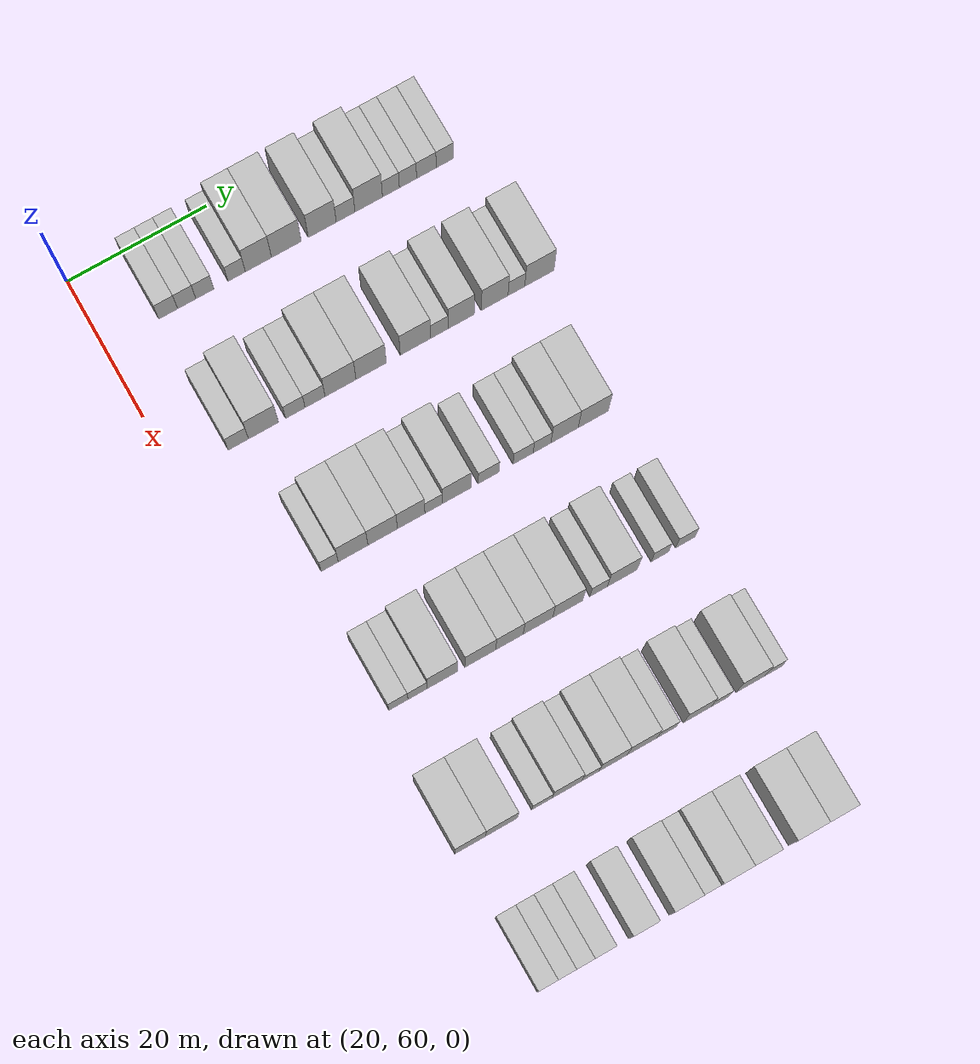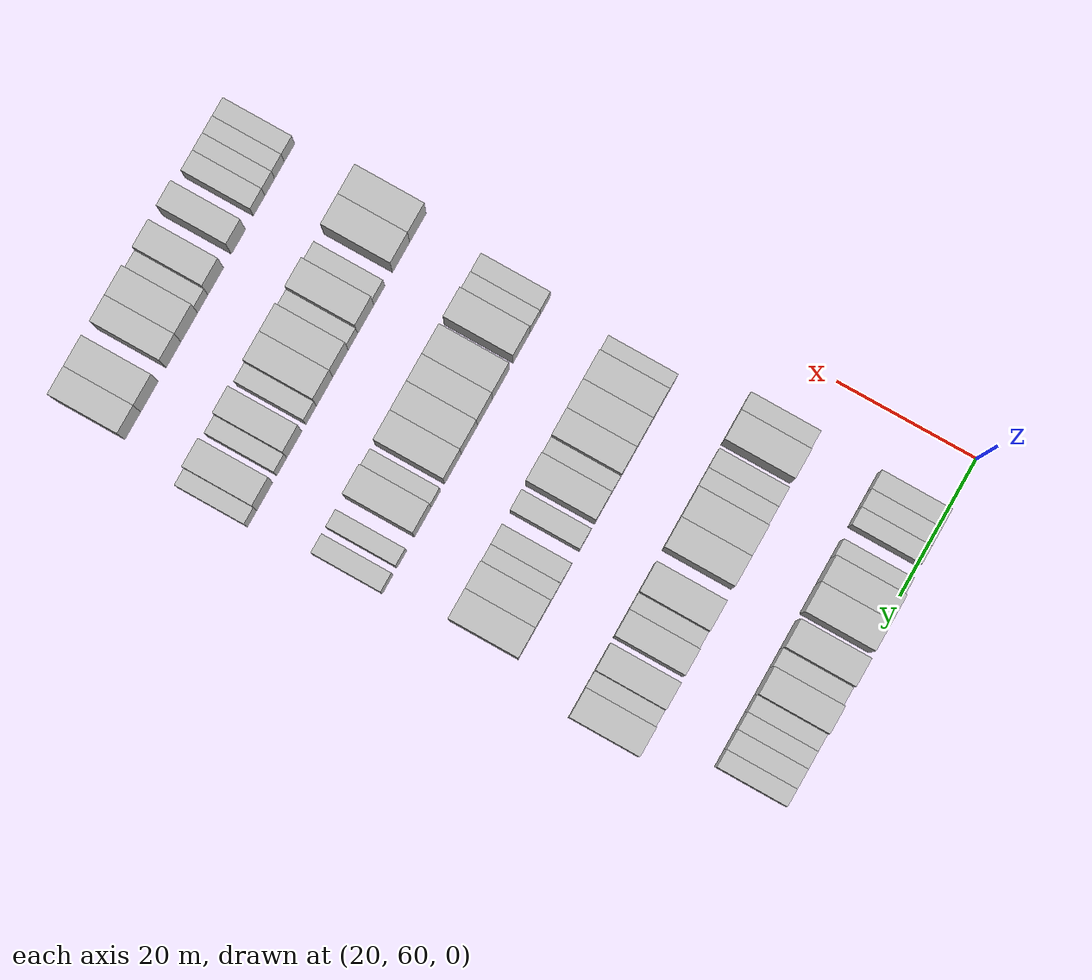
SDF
<sdf version="1.6">
 <world name="default">
  <model name="building_105">
   <static>1</static>
   <pose>25.0000 69.0365 0 0.000000 0.000000 0.000000</pose>
   <link name="link">
    <pose>0 0 3.00 0 0 0</pose>
    <collision name="collision"><geometry><box><size>10.0000 2.6834 6.0000</size></box></geometry></collision>
    <visual name="visual">
     <cast_shadows>0</cast_shadows>
     <geometry><box><size>10.0000 2.6834 6.0000</size></box></geometry>
     <material>
      <script>
       <uri>model://HANNAS_wall/materials/scripts</uri>
       <uri>model://HANNAS_wall/materials/textures</uri>
       <name>vrc/HANNAS_wall</name>
      </script>
     </material>
    </visual>
   </link>
  </model>
  <model name="building_106">
   <static>1</static>
   <pose>25.0000 71.6775 0 0.000000 0.000000 0.000000</pose>
   <link name="link">
    <pose>0 0 3.00 0 0 0</pose>
    <collision name="collision"><geometry><box><size>10.0000 2.5985 6.0000</size></box></geometry></collision>
    <visual name="visual">
     <cast_shadows>0</cast_shadows>
     <geometry><box><size>10.0000 2.5985 6.0000</size></box></geometry>
     <material>
      <script>
       <uri>model://HANNAS_wall/materials/scripts</uri>
       <uri>model://HANNAS_wall/materials/textures</uri>
       <name>vrc/HANNAS_wall</name>
      </script>
     </material>
    </visual>
   </link>
  </model>
  <model name="building_107">
   <static>1</static>
   <pose>25.0000 74.2675 0 0.000000 0.000000 0.000000</pose>
   <link name="link">
    <pose>0 0 3.00 0 0 0</pose>
    <collision name="collision"><geometry><box><size>10.0000 2.5816 6.0000</size></box></geometry></collision>
    <visual name="visual">
     <cast_shadows>0</cast_shadows>
     <geometry><box><size>10.0000 2.5816 6.0000</size></box></geometry>
     <material>
      <script>
       <uri>model://HANNAS_wall/materials/scripts</uri>
       <uri>model://HANNAS_wall/materials/textures</uri>
       <name>vrc/HANNAS_wall</name>
      </script>
     </material>
    </visual>
   </link>
  </model>
  <model name="building_108">
   <static>1</static>
   <pose>25.0000 78.8014 0 0.000000 0.000000 0.000000</pose>
   <link name="link">
    <pose>0 0 3.00 0 0 0</pose>
    <collision name="collision"><geometry><box><size>10.0000 2.4861 6.0000</size></box></geometry></collision>
    <visual name="visual">
     <cast_shadows>0</cast_shadows>
     <geometry><box><size>10.0000 2.4861 6.0000</size></box></geometry>
     <material>
      <script>
       <uri>model://HANNAS_wall/materials/scripts</uri>
       <uri>model://HANNAS_wall/materials/textures</uri>
       <name>vrc/HANNAS_wall</name>
      </script>
     </material>
    </visual>
   </link>
  </model>
  <model name="building_109">
   <static>1</static>
   <pose>25.0000 81.9229 0 0.000000 0.000000 0.000000</pose>
   <link name="link">
    <pose>0 0 4.50 0 0 0</pose>
    <collision name="collision"><geometry><box><size>10.0000 3.7568 9.0000</size></box></geometry></collision>
    <visual name="visual">
     <cast_shadows>0</cast_shadows>
     <geometry><box><size>10.0000 3.7568 9.0000</size></box></geometry>
     <material>
      <script>
       <uri>model://HANNAS_wall/materials/scripts</uri>
       <uri>model://HANNAS_wall/materials/textures</uri>
       <name>vrc/HANNAS_wall</name>
      </script>
     </material>
    </visual>
   </link>
  </model>
  <model name="building_110">
   <static>1</static>
   <pose>25.0000 85.9373 0 0.000000 0.000000 0.000000</pose>
   <link name="link">
    <pose>0 0 4.50 0 0 0</pose>
    <collision name="collision"><geometry><box><size>10.0000 4.2720 9.0000</size></box></geometry></collision>
    <visual name="visual">
     <cast_shadows>0</cast_shadows>
     <geometry><box><size>10.0000 4.2720 9.0000</size></box></geometry>
     <material>
      <script>
       <uri>model://HANNAS_wall/materials/scripts</uri>
       <uri>model://HANNAS_wall/materials/textures</uri>
       <name>vrc/HANNAS_wall</name>
      </script>
     </material>
    </visual>
   </link>
  </model>
  <model name="building_111">
   <static>1</static>
   <pose>25.0000 91.0894 0 0.000000 0.000000 0.000000</pose>
   <link name="link">
    <pose>0 0 4.50 0 0 0</pose>
    <collision name="collision"><geometry><box><size>10.0000 4.0320 9.0000</size></box></geometry></collision>
    <visual name="visual">
     <cast_shadows>0</cast_shadows>
     <geometry><box><size>10.0000 4.0320 9.0000</size></box></geometry>
     <material>
      <script>
       <uri>model://HANNAS_wall/materials/scripts</uri>
       <uri>model://HANNAS_wall/materials/textures</uri>
       <name>vrc/HANNAS_wall</name>
      </script>
     </material>
    </visual>
   </link>
  </model>
  <model name="building_112">
   <static>1</static>
   <pose>25.0000 94.4571 0 0.000000 0.000000 0.000000</pose>
   <link name="link">
    <pose>0 0 3.00 0 0 0</pose>
    <collision name="collision"><geometry><box><size>10.0000 2.7035 6.0000</size></box></geometry></collision>
    <visual name="visual">
     <cast_shadows>0</cast_shadows>
     <geometry><box><size>10.0000 2.7035 6.0000</size></box></geometry>
     <material>
      <script>
       <uri>model://HANNAS_wall/materials/scripts</uri>
       <uri>model://HANNAS_wall/materials/textures</uri>
       <name>vrc/HANNAS_wall</name>
      </script>
     </material>
    </visual>
   </link>
  </model>
  <model name="building_113">
   <static>1</static>
   <pose>25.0000 97.7942 0 0.000000 0.000000 0.000000</pose>
   <link name="link">
    <pose>0 0 4.50 0 0 0</pose>
    <collision name="collision"><geometry><box><size>10.0000 3.9705 9.0000</size></box></geometry></collision>
    <visual name="visual">
     <cast_shadows>0</cast_shadows>
     <geometry><box><size>10.0000 3.9705 9.0000</size></box></geometry>
     <material>
      <script>
       <uri>model://HANNAS_wall/materials/scripts</uri>
       <uri>model://HANNAS_wall/materials/textures</uri>
       <name>vrc/HANNAS_wall</name>
      </script>
     </material>
    </visual>
   </link>
  </model>
  <model name="building_114">
   <static>1</static>
   <pose>25.0000 101.0001 0 0.000000 0.000000 0.000000</pose>
   <link name="link">
    <pose>0 0 3.00 0 0 0</pose>
    <collision name="collision"><geometry><box><size>10.0000 2.4414 6.0000</size></box></geometry></collision>
    <visual name="visual">
     <cast_shadows>0</cast_shadows>
     <geometry><box><size>10.0000 2.4414 6.0000</size></box></geometry>
     <material>
      <script>
       <uri>model://HANNAS_wall/materials/scripts</uri>
       <uri>model://HANNAS_wall/materials/textures</uri>
       <name>vrc/HANNAS_wall</name>
      </script>
     </material>
    </visual>
   </link>
  </model>
  <model name="building_115">
   <static>1</static>
   <pose>25.0000 103.4690 0 0.000000 0.000000 0.000000</pose>
   <link name="link">
    <pose>0 0 3.00 0 0 0</pose>
    <collision name="collision"><geometry><box><size>10.0000 2.4964 6.0000</size></box></geometry></collision>
    <visual name="visual">
     <cast_shadows>0</cast_shadows>
     <geometry><box><size>10.0000 2.4964 6.0000</size></box></geometry>
     <material>
      <script>
       <uri>model://HANNAS_wall/materials/scripts</uri>
       <uri>model://HANNAS_wall/materials/textures</uri>
       <name>vrc/HANNAS_wall</name>
      </script>
     </material>
    </visual>
   </link>
  </model>
  <model name="building_116">
   <static>1</static>
   <pose>25.0000 106.1322 0 0.000000 0.000000 0.000000</pose>
   <link name="link">
    <pose>0 0 3.00 0 0 0</pose>
    <collision name="collision"><geometry><box><size>10.0000 2.8299 6.0000</size></box></geometry></collision>
    <visual name="visual">
     <cast_shadows>0</cast_shadows>
     <geometry><box><size>10.0000 2.8299 6.0000</size></box></geometry>
     <material>
      <script>
       <uri>model://HANNAS_wall/materials/scripts</uri>
       <uri>model://HANNAS_wall/materials/textures</uri>
       <name>vrc/HANNAS_wall</name>
      </script>
     </material>
    </visual>
   </link>
  </model>
  <model name="building_117">
   <static>1</static>
   <pose>25.0000 108.8115 0 0.000000 0.000000 0.000000</pose>
   <link name="link">
    <pose>0 0 3.00 0 0 0</pose>
    <collision name="collision"><geometry><box><size>10.0000 2.5289 6.0000</size></box></geometry></collision>
    <visual name="visual">
     <cast_shadows>0</cast_shadows>
     <geometry><box><size>10.0000 2.5289 6.0000</size></box></geometry>
     <material>
      <script>
       <uri>model://HANNAS_wall/materials/scripts</uri>
       <uri>model://HANNAS_wall/materials/textures</uri>
       <name>vrc/HANNAS_wall</name>
      </script>
     </material>
    </visual>
   </link>
  </model>
  <model name="building_284">
   <static>1</static>
   <pose>44.0000 68.5951 0 0.000000 0.000000 0.000000</pose>
   <link name="link">
    <pose>0 0 3.00 0 0 0</pose>
    <collision name="collision"><geometry><box><size>10.0000 2.8685 6.0000</size></box></geometry></collision>
    <visual name="visual">
     <cast_shadows>0</cast_shadows>
     <geometry><box><size>10.0000 2.8685 6.0000</size></box></geometry>
     <material>
      <script>
       <uri>model://HANNAS_wall/materials/scripts</uri>
       <uri>model://HANNAS_wall/materials/textures</uri>
       <name>vrc/HANNAS_wall</name>
      </script>
     </material>
    </visual>
   </link>
  </model>
  <model name="building_285">
   <static>1</static>
   <pose>44.0000 72.1524 0 0.000000 0.000000 0.000000</pose>
   <link name="link">
    <pose>0 0 4.50 0 0 0</pose>
    <collision name="collision"><geometry><box><size>10.0000 4.2460 9.0000</size></box></geometry></collision>
    <visual name="visual">
     <cast_shadows>0</cast_shadows>
     <geometry><box><size>10.0000 4.2460 9.0000</size></box></geometry>
     <material>
      <script>
       <uri>model://HANNAS_wall/materials/scripts</uri>
       <uri>model://HANNAS_wall/materials/textures</uri>
       <name>vrc/HANNAS_wall</name>
      </script>
     </material>
    </visual>
   </link>
  </model>
  <model name="building_286">
   <static>1</static>
   <pose>44.0000 76.6606 0 0.000000 0.000000 0.000000</pose>
   <link name="link">
    <pose>0 0 3.00 0 0 0</pose>
    <collision name="collision"><geometry><box><size>10.0000 2.7705 6.0000</size></box></geometry></collision>
    <visual name="visual">
     <cast_shadows>0</cast_shadows>
     <geometry><box><size>10.0000 2.7705 6.0000</size></box></geometry>
     <material>
      <script>
       <uri>model://HANNAS_wall/materials/scripts</uri>
       <uri>model://HANNAS_wall/materials/textures</uri>
       <name>vrc/HANNAS_wall</name>
      </script>
     </material>
    </visual>
   </link>
  </model>
  <model name="building_287">
   <static>1</static>
   <pose>44.0000 79.4630 0 0.000000 0.000000 0.000000</pose>
   <link name="link">
    <pose>0 0 3.00 0 0 0</pose>
    <collision name="collision"><geometry><box><size>10.0000 2.8343 6.0000</size></box></geometry></collision>
    <visual name="visual">
     <cast_shadows>0</cast_shadows>
     <geometry><box><size>10.0000 2.8343 6.0000</size></box></geometry>
     <material>
      <script>
       <uri>model://HANNAS_wall/materials/scripts</uri>
       <uri>model://HANNAS_wall/materials/textures</uri>
       <name>vrc/HANNAS_wall</name>
      </script>
     </material>
    </visual>
   </link>
  </model>
  <model name="building_288">
   <static>1</static>
   <pose>44.0000 83.0851 0 0.000000 0.000000 0.000000</pose>
   <link name="link">
    <pose>0 0 4.50 0 0 0</pose>
    <collision name="collision"><geometry><box><size>10.0000 4.4100 9.0000</size></box></geometry></collision>
    <visual name="visual">
     <cast_shadows>0</cast_shadows>
     <geometry><box><size>10.0000 4.4100 9.0000</size></box></geometry>
     <material>
      <script>
       <uri>model://HANNAS_wall/materials/scripts</uri>
       <uri>model://HANNAS_wall/materials/textures</uri>
       <name>vrc/HANNAS_wall</name>
      </script>
     </material>
    </visual>
   </link>
  </model>
  <model name="building_289">
   <static>1</static>
   <pose>44.0000 87.4494 0 0.000000 0.000000 0.000000</pose>
   <link name="link">
    <pose>0 0 4.50 0 0 0</pose>
    <collision name="collision"><geometry><box><size>10.0000 4.3185 9.0000</size></box></geometry></collision>
    <visual name="visual">
     <cast_shadows>0</cast_shadows>
     <geometry><box><size>10.0000 4.3185 9.0000</size></box></geometry>
     <material>
      <script>
       <uri>model://HANNAS_wall/materials/scripts</uri>
       <uri>model://HANNAS_wall/materials/textures</uri>
       <name>vrc/HANNAS_wall</name>
      </script>
     </material>
    </visual>
   </link>
  </model>
  <model name="building_290">
   <static>1</static>
   <pose>44.0000 93.7740 0 0.000000 0.000000 0.000000</pose>
   <link name="link">
    <pose>0 0 4.50 0 0 0</pose>
    <collision name="collision"><geometry><box><size>10.0000 4.3306 9.0000</size></box></geometry></collision>
    <visual name="visual">
     <cast_shadows>0</cast_shadows>
     <geometry><box><size>10.0000 4.3306 9.0000</size></box></geometry>
     <material>
      <script>
       <uri>model://HANNAS_wall/materials/scripts</uri>
       <uri>model://HANNAS_wall/materials/textures</uri>
       <name>vrc/HANNAS_wall</name>
      </script>
     </material>
    </visual>
   </link>
  </model>
  <model name="building_291">
   <static>1</static>
   <pose>44.0000 97.1938 0 0.000000 0.000000 0.000000</pose>
   <link name="link">
    <pose>0 0 3.00 0 0 0</pose>
    <collision name="collision"><geometry><box><size>10.0000 2.5091 6.0000</size></box></geometry></collision>
    <visual name="visual">
     <cast_shadows>0</cast_shadows>
     <geometry><box><size>10.0000 2.5091 6.0000</size></box></geometry>
     <material>
      <script>
       <uri>model://HANNAS_wall/materials/scripts</uri>
       <uri>model://HANNAS_wall/materials/textures</uri>
       <name>vrc/HANNAS_wall</name>
      </script>
     </material>
    </visual>
   </link>
  </model>
  <model name="building_292">
   <static>1</static>
   <pose>44.0000 100.3303 0 0.000000 0.000000 0.000000</pose>
   <link name="link">
    <pose>0 0 4.50 0 0 0</pose>
    <collision name="collision"><geometry><box><size>10.0000 3.7640 9.0000</size></box></geometry></collision>
    <visual name="visual">
     <cast_shadows>0</cast_shadows>
     <geometry><box><size>10.0000 3.7640 9.0000</size></box></geometry>
     <material>
      <script>
       <uri>model://HANNAS_wall/materials/scripts</uri>
       <uri>model://HANNAS_wall/materials/textures</uri>
       <name>vrc/HANNAS_wall</name>
      </script>
     </material>
    </visual>
   </link>
  </model>
  <model name="building_293">
   <static>1</static>
   <pose>44.0000 105.1509 0 0.000000 0.000000 0.000000</pose>
   <link name="link">
    <pose>0 0 4.50 0 0 0</pose>
    <collision name="collision"><geometry><box><size>10.0000 3.8773 9.0000</size></box></geometry></collision>
    <visual name="visual">
     <cast_shadows>0</cast_shadows>
     <geometry><box><size>10.0000 3.8773 9.0000</size></box></geometry>
     <material>
      <script>
       <uri>model://HANNAS_wall/materials/scripts</uri>
       <uri>model://HANNAS_wall/materials/textures</uri>
       <name>vrc/HANNAS_wall</name>
      </script>
     </material>
    </visual>
   </link>
  </model>
  <model name="building_294">
   <static>1</static>
   <pose>44.0000 108.2915 0 0.000000 0.000000 0.000000</pose>
   <link name="link">
    <pose>0 0 3.00 0 0 0</pose>
    <collision name="collision"><geometry><box><size>10.0000 2.4039 6.0000</size></box></geometry></collision>
    <visual name="visual">
     <cast_shadows>0</cast_shadows>
     <geometry><box><size>10.0000 2.4039 6.0000</size></box></geometry>
     <material>
      <script>
       <uri>model://HANNAS_wall/materials/scripts</uri>
       <uri>model://HANNAS_wall/materials/textures</uri>
       <name>vrc/HANNAS_wall</name>
      </script>
     </material>
    </visual>
   </link>
  </model>
  <model name="building_295">
   <static>1</static>
   <pose>44.0000 111.6051 0 0.000000 0.000000 0.000000</pose>
   <link name="link">
    <pose>0 0 4.50 0 0 0</pose>
    <collision name="collision"><geometry><box><size>10.0000 4.2231 9.0000</size></box></geometry></collision>
    <visual name="visual">
     <cast_shadows>0</cast_shadows>
     <geometry><box><size>10.0000 4.2231 9.0000</size></box></geometry>
     <material>
      <script>
       <uri>model://HANNAS_wall/materials/scripts</uri>
       <uri>model://HANNAS_wall/materials/textures</uri>
       <name>vrc/HANNAS_wall</name>
      </script>
     </material>
    </visual>
   </link>
  </model>
  <model name="building_459">
   <static>1</static>
   <pose>63.0000 70.9305 0 0.000000 0.000000 0.000000</pose>
   <link name="link">
    <pose>0 0 3.00 0 0 0</pose>
    <collision name="collision"><geometry><box><size>10.0000 2.4033 6.0000</size></box></geometry></collision>
    <visual name="visual">
     <cast_shadows>0</cast_shadows>
     <geometry><box><size>10.0000 2.4033 6.0000</size></box></geometry>
     <material>
      <script>
       <uri>model://HANNAS_wall/materials/scripts</uri>
       <uri>model://HANNAS_wall/materials/textures</uri>
       <name>vrc/HANNAS_wall</name>
      </script>
     </material>
    </visual>
   </link>
  </model>
  <model name="building_460">
   <static>1</static>
   <pose>63.0000 74.2197 0 0.000000 0.000000 0.000000</pose>
   <link name="link">
    <pose>0 0 4.50 0 0 0</pose>
    <collision name="collision"><geometry><box><size>10.0000 4.1751 9.0000</size></box></geometry></collision>
    <visual name="visual">
     <cast_shadows>0</cast_shadows>
     <geometry><box><size>10.0000 4.1751 9.0000</size></box></geometry>
     <material>
      <script>
       <uri>model://HANNAS_wall/materials/scripts</uri>
       <uri>model://HANNAS_wall/materials/textures</uri>
       <name>vrc/HANNAS_wall</name>
      </script>
     </material>
    </visual>
   </link>
  </model>
  <model name="building_461">
   <static>1</static>
   <pose>63.0000 78.3830 0 0.000000 0.000000 0.000000</pose>
   <link name="link">
    <pose>0 0 4.50 0 0 0</pose>
    <collision name="collision"><geometry><box><size>10.0000 4.1514 9.0000</size></box></geometry></collision>
    <visual name="visual">
     <cast_shadows>0</cast_shadows>
     <geometry><box><size>10.0000 4.1514 9.0000</size></box></geometry>
     <material>
      <script>
       <uri>model://HANNAS_wall/materials/scripts</uri>
       <uri>model://HANNAS_wall/materials/textures</uri>
       <name>vrc/HANNAS_wall</name>
      </script>
     </material>
    </visual>
   </link>
  </model>
  <model name="building_462">
   <static>1</static>
   <pose>63.0000 82.4024 0 0.000000 0.000000 0.000000</pose>
   <link name="link">
    <pose>0 0 4.50 0 0 0</pose>
    <collision name="collision"><geometry><box><size>10.0000 3.8875 9.0000</size></box></geometry></collision>
    <visual name="visual">
     <cast_shadows>0</cast_shadows>
     <geometry><box><size>10.0000 3.8875 9.0000</size></box></geometry>
     <material>
      <script>
       <uri>model://HANNAS_wall/materials/scripts</uri>
       <uri>model://HANNAS_wall/materials/textures</uri>
       <name>vrc/HANNAS_wall</name>
      </script>
     </material>
    </visual>
   </link>
  </model>
  <model name="building_463">
   <static>1</static>
   <pose>63.0000 85.5853 0 0.000000 0.000000 0.000000</pose>
   <link name="link">
    <pose>0 0 3.00 0 0 0</pose>
    <collision name="collision"><geometry><box><size>10.0000 2.4783 6.0000</size></box></geometry></collision>
    <visual name="visual">
     <cast_shadows>0</cast_shadows>
     <geometry><box><size>10.0000 2.4783 6.0000</size></box></geometry>
     <material>
      <script>
       <uri>model://HANNAS_wall/materials/scripts</uri>
       <uri>model://HANNAS_wall/materials/textures</uri>
       <name>vrc/HANNAS_wall</name>
      </script>
     </material>
    </visual>
   </link>
  </model>
  <model name="building_464">
   <static>1</static>
   <pose>63.0000 88.8524 0 0.000000 0.000000 0.000000</pose>
   <link name="link">
    <pose>0 0 4.50 0 0 0</pose>
    <collision name="collision"><geometry><box><size>10.0000 4.0561 9.0000</size></box></geometry></collision>
    <visual name="visual">
     <cast_shadows>0</cast_shadows>
     <geometry><box><size>10.0000 4.0561 9.0000</size></box></geometry>
     <material>
      <script>
       <uri>model://HANNAS_wall/materials/scripts</uri>
       <uri>model://HANNAS_wall/materials/textures</uri>
       <name>vrc/HANNAS_wall</name>
      </script>
     </material>
    </visual>
   </link>
  </model>
  <model name="building_465">
   <static>1</static>
   <pose>63.0000 93.3658 0 0.000000 0.000000 0.000000</pose>
   <link name="link">
    <pose>0 0 3.00 0 0 0</pose>
    <collision name="collision"><geometry><box><size>10.0000 2.9708 6.0000</size></box></geometry></collision>
    <visual name="visual">
     <cast_shadows>0</cast_shadows>
     <geometry><box><size>10.0000 2.9708 6.0000</size></box></geometry>
     <material>
      <script>
       <uri>model://HANNAS_wall/materials/scripts</uri>
       <uri>model://HANNAS_wall/materials/textures</uri>
       <name>vrc/HANNAS_wall</name>
      </script>
     </material>
    </visual>
   </link>
  </model>
  <model name="building_466">
   <static>1</static>
   <pose>63.0000 98.2830 0 0.000000 0.000000 0.000000</pose>
   <link name="link">
    <pose>0 0 3.00 0 0 0</pose>
    <collision name="collision"><geometry><box><size>10.0000 2.8636 6.0000</size></box></geometry></collision>
    <visual name="visual">
     <cast_shadows>0</cast_shadows>
     <geometry><box><size>10.0000 2.8636 6.0000</size></box></geometry>
     <material>
      <script>
       <uri>model://HANNAS_wall/materials/scripts</uri>
       <uri>model://HANNAS_wall/materials/textures</uri>
       <name>vrc/HANNAS_wall</name>
      </script>
     </material>
    </visual>
   </link>
  </model>
  <model name="building_467">
   <static>1</static>
   <pose>63.0000 100.9852 0 0.000000 0.000000 0.000000</pose>
   <link name="link">
    <pose>0 0 3.00 0 0 0</pose>
    <collision name="collision"><geometry><box><size>10.0000 2.5406 6.0000</size></box></geometry></collision>
    <visual name="visual">
     <cast_shadows>0</cast_shadows>
     <geometry><box><size>10.0000 2.5406 6.0000</size></box></geometry>
     <material>
      <script>
       <uri>model://HANNAS_wall/materials/scripts</uri>
       <uri>model://HANNAS_wall/materials/textures</uri>
       <name>vrc/HANNAS_wall</name>
      </script>
     </material>
    </visual>
   </link>
  </model>
  <model name="building_468">
   <static>1</static>
   <pose>63.0000 104.2088 0 0.000000 0.000000 0.000000</pose>
   <link name="link">
    <pose>0 0 4.50 0 0 0</pose>
    <collision name="collision"><geometry><box><size>10.0000 3.9067 9.0000</size></box></geometry></collision>
    <visual name="visual">
     <cast_shadows>0</cast_shadows>
     <geometry><box><size>10.0000 3.9067 9.0000</size></box></geometry>
     <material>
      <script>
       <uri>model://HANNAS_wall/materials/scripts</uri>
       <uri>model://HANNAS_wall/materials/textures</uri>
       <name>vrc/HANNAS_wall</name>
      </script>
     </material>
    </visual>
   </link>
  </model>
  <model name="building_469">
   <static>1</static>
   <pose>63.0000 108.3186 0 0.000000 0.000000 0.000000</pose>
   <link name="link">
    <pose>0 0 4.50 0 0 0</pose>
    <collision name="collision"><geometry><box><size>10.0000 4.3129 9.0000</size></box></geometry></collision>
    <visual name="visual">
     <cast_shadows>0</cast_shadows>
     <geometry><box><size>10.0000 4.3129 9.0000</size></box></geometry>
     <material>
      <script>
       <uri>model://HANNAS_wall/materials/scripts</uri>
       <uri>model://HANNAS_wall/materials/textures</uri>
       <name>vrc/HANNAS_wall</name>
      </script>
     </material>
    </visual>
   </link>
  </model>
  <model name="building_630">
   <static>1</static>
   <pose>82.0000 69.8633 0 0.000000 0.000000 0.000000</pose>
   <link name="link">
    <pose>0 0 3.00 0 0 0</pose>
    <collision name="collision"><geometry><box><size>10.0000 2.6681 6.0000</size></box></geometry></collision>
    <visual name="visual">
     <cast_shadows>0</cast_shadows>
     <geometry><box><size>10.0000 2.6681 6.0000</size></box></geometry>
     <material>
      <script>
       <uri>model://HANNAS_wall/materials/scripts</uri>
       <uri>model://HANNAS_wall/materials/textures</uri>
       <name>vrc/HANNAS_wall</name>
      </script>
     </material>
    </visual>
   </link>
  </model>
  <model name="building_631">
   <static>1</static>
   <pose>82.0000 72.5353 0 0.000000 0.000000 0.000000</pose>
   <link name="link">
    <pose>0 0 3.00 0 0 0</pose>
    <collision name="collision"><geometry><box><size>10.0000 2.6759 6.0000</size></box></geometry></collision>
    <visual name="visual">
     <cast_shadows>0</cast_shadows>
     <geometry><box><size>10.0000 2.6759 6.0000</size></box></geometry>
     <material>
      <script>
       <uri>model://HANNAS_wall/materials/scripts</uri>
       <uri>model://HANNAS_wall/materials/textures</uri>
       <name>vrc/HANNAS_wall</name>
      </script>
     </material>
    </visual>
   </link>
  </model>
  <model name="building_632">
   <static>1</static>
   <pose>82.0000 75.9998 0 0.000000 0.000000 0.000000</pose>
   <link name="link">
    <pose>0 0 4.50 0 0 0</pose>
    <collision name="collision"><geometry><box><size>10.0000 4.2531 9.0000</size></box></geometry></collision>
    <visual name="visual">
     <cast_shadows>0</cast_shadows>
     <geometry><box><size>10.0000 4.2531 9.0000</size></box></geometry>
     <material>
      <script>
       <uri>model://HANNAS_wall/materials/scripts</uri>
       <uri>model://HANNAS_wall/materials/textures</uri>
       <name>vrc/HANNAS_wall</name>
      </script>
     </material>
    </visual>
   </link>
  </model>
  <model name="building_633">
   <static>1</static>
   <pose>82.0000 81.2829 0 0.000000 0.000000 0.000000</pose>
   <link name="link">
    <pose>0 0 4.50 0 0 0</pose>
    <collision name="collision"><geometry><box><size>10.0000 4.3130 9.0000</size></box></geometry></collision>
    <visual name="visual">
     <cast_shadows>0</cast_shadows>
     <geometry><box><size>10.0000 4.3130 9.0000</size></box></geometry>
     <material>
      <script>
       <uri>model://HANNAS_wall/materials/scripts</uri>
       <uri>model://HANNAS_wall/materials/textures</uri>
       <name>vrc/HANNAS_wall</name>
      </script>
     </material>
    </visual>
   </link>
  </model>
  <model name="building_634">
   <static>1</static>
   <pose>82.0000 85.3814 0 0.000000 0.000000 0.000000</pose>
   <link name="link">
    <pose>0 0 4.50 0 0 0</pose>
    <collision name="collision"><geometry><box><size>10.0000 3.8842 9.0000</size></box></geometry></collision>
    <visual name="visual">
     <cast_shadows>0</cast_shadows>
     <geometry><box><size>10.0000 3.8842 9.0000</size></box></geometry>
     <material>
      <script>
       <uri>model://HANNAS_wall/materials/scripts</uri>
       <uri>model://HANNAS_wall/materials/textures</uri>
       <name>vrc/HANNAS_wall</name>
      </script>
     </material>
    </visual>
   </link>
  </model>
  <model name="building_635">
   <static>1</static>
   <pose>82.0000 89.4037 0 0.000000 0.000000 0.000000</pose>
   <link name="link">
    <pose>0 0 4.50 0 0 0</pose>
    <collision name="collision"><geometry><box><size>10.0000 4.1604 9.0000</size></box></geometry></collision>
    <visual name="visual">
     <cast_shadows>0</cast_shadows>
     <geometry><box><size>10.0000 4.1604 9.0000</size></box></geometry>
     <material>
      <script>
       <uri>model://HANNAS_wall/materials/scripts</uri>
       <uri>model://HANNAS_wall/materials/textures</uri>
       <name>vrc/HANNAS_wall</name>
      </script>
     </material>
    </visual>
   </link>
  </model>
  <model name="building_636">
   <static>1</static>
   <pose>82.0000 93.6115 0 0.000000 0.000000 0.000000</pose>
   <link name="link">
    <pose>0 0 4.50 0 0 0</pose>
    <collision name="collision"><geometry><box><size>10.0000 4.2551 9.0000</size></box></geometry></collision>
    <visual name="visual">
     <cast_shadows>0</cast_shadows>
     <geometry><box><size>10.0000 4.2551 9.0000</size></box></geometry>
     <material>
      <script>
       <uri>model://HANNAS_wall/materials/scripts</uri>
       <uri>model://HANNAS_wall/materials/textures</uri>
       <name>vrc/HANNAS_wall</name>
      </script>
     </material>
    </visual>
   </link>
  </model>
  <model name="building_637">
   <static>1</static>
   <pose>82.0000 97.9746 0 0.000000 0.000000 0.000000</pose>
   <link name="link">
    <pose>0 0 3.00 0 0 0</pose>
    <collision name="collision"><geometry><box><size>10.0000 2.4712 6.0000</size></box></geometry></collision>
    <visual name="visual">
     <cast_shadows>0</cast_shadows>
     <geometry><box><size>10.0000 2.4712 6.0000</size></box></geometry>
     <material>
      <script>
       <uri>model://HANNAS_wall/materials/scripts</uri>
       <uri>model://HANNAS_wall/materials/textures</uri>
       <name>vrc/HANNAS_wall</name>
      </script>
     </material>
    </visual>
   </link>
  </model>
  <model name="building_638">
   <static>1</static>
   <pose>82.0000 101.3281 0 0.000000 0.000000 0.000000</pose>
   <link name="link">
    <pose>0 0 4.50 0 0 0</pose>
    <collision name="collision"><geometry><box><size>10.0000 4.2358 9.0000</size></box></geometry></collision>
    <visual name="visual">
     <cast_shadows>0</cast_shadows>
     <geometry><box><size>10.0000 4.2358 9.0000</size></box></geometry>
     <material>
      <script>
       <uri>model://HANNAS_wall/materials/scripts</uri>
       <uri>model://HANNAS_wall/materials/textures</uri>
       <name>vrc/HANNAS_wall</name>
      </script>
     </material>
    </visual>
   </link>
  </model>
  <model name="building_639">
   <static>1</static>
   <pose>82.0000 106.6912 0 0.000000 0.000000 0.000000</pose>
   <link name="link">
    <pose>0 0 3.00 0 0 0</pose>
    <collision name="collision"><geometry><box><size>10.0000 2.4903 6.0000</size></box></geometry></collision>
    <visual name="visual">
     <cast_shadows>0</cast_shadows>
     <geometry><box><size>10.0000 2.4903 6.0000</size></box></geometry>
     <material>
      <script>
       <uri>model://HANNAS_wall/materials/scripts</uri>
       <uri>model://HANNAS_wall/materials/textures</uri>
       <name>vrc/HANNAS_wall</name>
      </script>
     </material>
    </visual>
   </link>
  </model>
  <model name="building_640">
   <static>1</static>
   <pose>82.0000 110.3034 0 0.000000 0.000000 0.000000</pose>
   <link name="link">
    <pose>0 0 3.00 0 0 0</pose>
    <collision name="collision"><geometry><box><size>10.0000 2.7342 6.0000</size></box></geometry></collision>
    <visual name="visual">
     <cast_shadows>0</cast_shadows>
     <geometry><box><size>10.0000 2.7342 6.0000</size></box></geometry>
     <material>
      <script>
       <uri>model://HANNAS_wall/materials/scripts</uri>
       <uri>model://HANNAS_wall/materials/textures</uri>
       <name>vrc/HANNAS_wall</name>
      </script>
     </material>
    </visual>
   </link>
  </model>
  <model name="building_811">
   <static>1</static>
   <pose>101.0000 69.0007 0 0.000000 0.000000 0.000000</pose>
   <link name="link">
    <pose>0 0 4.50 0 0 0</pose>
    <collision name="collision"><geometry><box><size>10.0000 4.2502 9.0000</size></box></geometry></collision>
    <visual name="visual">
     <cast_shadows>0</cast_shadows>
     <geometry><box><size>10.0000 4.2502 9.0000</size></box></geometry>
     <material>
      <script>
       <uri>model://HANNAS_wall/materials/scripts</uri>
       <uri>model://HANNAS_wall/materials/textures</uri>
       <name>vrc/HANNAS_wall</name>
      </script>
     </material>
    </visual>
   </link>
  </model>
  <model name="building_812">
   <static>1</static>
   <pose>101.0000 73.3295 0 0.000000 0.000000 0.000000</pose>
   <link name="link">
    <pose>0 0 4.50 0 0 0</pose>
    <collision name="collision"><geometry><box><size>10.0000 4.4074 9.0000</size></box></geometry></collision>
    <visual name="visual">
     <cast_shadows>0</cast_shadows>
     <geometry><box><size>10.0000 4.4074 9.0000</size></box></geometry>
     <material>
      <script>
       <uri>model://HANNAS_wall/materials/scripts</uri>
       <uri>model://HANNAS_wall/materials/textures</uri>
       <name>vrc/HANNAS_wall</name>
      </script>
     </material>
    </visual>
   </link>
  </model>
  <model name="building_813">
   <static>1</static>
   <pose>101.0000 78.9346 0 0.000000 0.000000 0.000000</pose>
   <link name="link">
    <pose>0 0 3.00 0 0 0</pose>
    <collision name="collision"><geometry><box><size>10.0000 2.8027 6.0000</size></box></geometry></collision>
    <visual name="visual">
     <cast_shadows>0</cast_shadows>
     <geometry><box><size>10.0000 2.8027 6.0000</size></box></geometry>
     <material>
      <script>
       <uri>model://HANNAS_wall/materials/scripts</uri>
       <uri>model://HANNAS_wall/materials/textures</uri>
       <name>vrc/HANNAS_wall</name>
      </script>
     </material>
    </visual>
   </link>
  </model>
  <model name="building_814">
   <static>1</static>
   <pose>101.0000 82.4153 0 0.000000 0.000000 0.000000</pose>
   <link name="link">
    <pose>0 0 4.50 0 0 0</pose>
    <collision name="collision"><geometry><box><size>10.0000 4.1587 9.0000</size></box></geometry></collision>
    <visual name="visual">
     <cast_shadows>0</cast_shadows>
     <geometry><box><size>10.0000 4.1587 9.0000</size></box></geometry>
     <material>
      <script>
       <uri>model://HANNAS_wall/materials/scripts</uri>
       <uri>model://HANNAS_wall/materials/textures</uri>
       <name>vrc/HANNAS_wall</name>
      </script>
     </material>
    </visual>
   </link>
  </model>
  <model name="building_815">
   <static>1</static>
   <pose>101.0000 85.7117 0 0.000000 0.000000 0.000000</pose>
   <link name="link">
    <pose>0 0 3.00 0 0 0</pose>
    <collision name="collision"><geometry><box><size>10.0000 2.4341 6.0000</size></box></geometry></collision>
    <visual name="visual">
     <cast_shadows>0</cast_shadows>
     <geometry><box><size>10.0000 2.4341 6.0000</size></box></geometry>
     <material>
      <script>
       <uri>model://HANNAS_wall/materials/scripts</uri>
       <uri>model://HANNAS_wall/materials/textures</uri>
       <name>vrc/HANNAS_wall</name>
      </script>
     </material>
    </visual>
   </link>
  </model>
  <model name="building_816">
   <static>1</static>
   <pose>101.0000 88.9096 0 0.000000 0.000000 0.000000</pose>
   <link name="link">
    <pose>0 0 4.50 0 0 0</pose>
    <collision name="collision"><geometry><box><size>10.0000 3.9616 9.0000</size></box></geometry></collision>
    <visual name="visual">
     <cast_shadows>0</cast_shadows>
     <geometry><box><size>10.0000 3.9616 9.0000</size></box></geometry>
     <material>
      <script>
       <uri>model://HANNAS_wall/materials/scripts</uri>
       <uri>model://HANNAS_wall/materials/textures</uri>
       <name>vrc/HANNAS_wall</name>
      </script>
     </material>
    </visual>
   </link>
  </model>
  <model name="building_817">
   <static>1</static>
   <pose>101.0000 92.9755 0 0.000000 0.000000 0.000000</pose>
   <link name="link">
    <pose>0 0 4.50 0 0 0</pose>
    <collision name="collision"><geometry><box><size>10.0000 4.1702 9.0000</size></box></geometry></collision>
    <visual name="visual">
     <cast_shadows>0</cast_shadows>
     <geometry><box><size>10.0000 4.1702 9.0000</size></box></geometry>
     <material>
      <script>
       <uri>model://HANNAS_wall/materials/scripts</uri>
       <uri>model://HANNAS_wall/materials/textures</uri>
       <name>vrc/HANNAS_wall</name>
      </script>
     </material>
    </visual>
   </link>
  </model>
  <model name="building_818">
   <static>1</static>
   <pose>101.0000 96.4125 0 0.000000 0.000000 0.000000</pose>
   <link name="link">
    <pose>0 0 3.00 0 0 0</pose>
    <collision name="collision"><geometry><box><size>10.0000 2.7037 6.0000</size></box></geometry></collision>
    <visual name="visual">
     <cast_shadows>0</cast_shadows>
     <geometry><box><size>10.0000 2.7037 6.0000</size></box></geometry>
     <material>
      <script>
       <uri>model://HANNAS_wall/materials/scripts</uri>
       <uri>model://HANNAS_wall/materials/textures</uri>
       <name>vrc/HANNAS_wall</name>
      </script>
     </material>
    </visual>
   </link>
  </model>
  <model name="building_819">
   <static>1</static>
   <pose>101.0000 100.6982 0 0.000000 0.000000 0.000000</pose>
   <link name="link">
    <pose>0 0 4.50 0 0 0</pose>
    <collision name="collision"><geometry><box><size>10.0000 3.8678 9.0000</size></box></geometry></collision>
    <visual name="visual">
     <cast_shadows>0</cast_shadows>
     <geometry><box><size>10.0000 3.8678 9.0000</size></box></geometry>
     <material>
      <script>
       <uri>model://HANNAS_wall/materials/scripts</uri>
       <uri>model://HANNAS_wall/materials/textures</uri>
       <name>vrc/HANNAS_wall</name>
      </script>
     </material>
    </visual>
   </link>
  </model>
  <model name="building_820">
   <static>1</static>
   <pose>101.0000 103.9191 0 0.000000 0.000000 0.000000</pose>
   <link name="link">
    <pose>0 0 3.00 0 0 0</pose>
    <collision name="collision"><geometry><box><size>10.0000 2.5741 6.0000</size></box></geometry></collision>
    <visual name="visual">
     <cast_shadows>0</cast_shadows>
     <geometry><box><size>10.0000 2.5741 6.0000</size></box></geometry>
     <material>
      <script>
       <uri>model://HANNAS_wall/materials/scripts</uri>
       <uri>model://HANNAS_wall/materials/textures</uri>
       <name>vrc/HANNAS_wall</name>
      </script>
     </material>
    </visual>
   </link>
  </model>
  <model name="building_821">
   <static>1</static>
   <pose>101.0000 108.2430 0 0.000000 0.000000 0.000000</pose>
   <link name="link">
    <pose>0 0 4.50 0 0 0</pose>
    <collision name="collision"><geometry><box><size>10.0000 4.0737 9.0000</size></box></geometry></collision>
    <visual name="visual">
     <cast_shadows>0</cast_shadows>
     <geometry><box><size>10.0000 4.0737 9.0000</size></box></geometry>
     <material>
      <script>
       <uri>model://HANNAS_wall/materials/scripts</uri>
       <uri>model://HANNAS_wall/materials/textures</uri>
       <name>vrc/HANNAS_wall</name>
      </script>
     </material>
    </visual>
   </link>
  </model>
  <model name="building_822">
   <static>1</static>
   <pose>101.0000 111.4806 0 0.000000 0.000000 0.000000</pose>
   <link name="link">
    <pose>0 0 3.00 0 0 0</pose>
    <collision name="collision"><geometry><box><size>10.0000 2.4013 6.0000</size></box></geometry></collision>
    <visual name="visual">
     <cast_shadows>0</cast_shadows>
     <geometry><box><size>10.0000 2.4013 6.0000</size></box></geometry>
     <material>
      <script>
       <uri>model://HANNAS_wall/materials/scripts</uri>
       <uri>model://HANNAS_wall/materials/textures</uri>
       <name>vrc/HANNAS_wall</name>
      </script>
     </material>
    </visual>
   </link>
  </model>
  <model name="building_981">
   <static>1</static>
   <pose>120.0000 68.6291 0 0.000000 0.000000 0.000000</pose>
   <link name="link">
    <pose>0 0 3.00 0 0 0</pose>
    <collision name="collision"><geometry><box><size>10.0000 2.6741 6.0000</size></box></geometry></collision>
    <visual name="visual">
     <cast_shadows>0</cast_shadows>
     <geometry><box><size>10.0000 2.6741 6.0000</size></box></geometry>
     <material>
      <script>
       <uri>model://HANNAS_wall/materials/scripts</uri>
       <uri>model://HANNAS_wall/materials/textures</uri>
       <name>vrc/HANNAS_wall</name>
      </script>
     </material>
    </visual>
   </link>
  </model>
  <model name="building_982">
   <static>1</static>
   <pose>120.0000 71.2074 0 0.000000 0.000000 0.000000</pose>
   <link name="link">
    <pose>0 0 3.00 0 0 0</pose>
    <collision name="collision"><geometry><box><size>10.0000 2.4826 6.0000</size></box></geometry></collision>
    <visual name="visual">
     <cast_shadows>0</cast_shadows>
     <geometry><box><size>10.0000 2.4826 6.0000</size></box></geometry>
     <material>
      <script>
       <uri>model://HANNAS_wall/materials/scripts</uri>
       <uri>model://HANNAS_wall/materials/textures</uri>
       <name>vrc/HANNAS_wall</name>
      </script>
     </material>
    </visual>
   </link>
  </model>
  <model name="building_983">
   <static>1</static>
   <pose>120.0000 73.7010 0 0.000000 0.000000 0.000000</pose>
   <link name="link">
    <pose>0 0 3.00 0 0 0</pose>
    <collision name="collision"><geometry><box><size>10.0000 2.5045 6.0000</size></box></geometry></collision>
    <visual name="visual">
     <cast_shadows>0</cast_shadows>
     <geometry><box><size>10.0000 2.5045 6.0000</size></box></geometry>
     <material>
      <script>
       <uri>model://HANNAS_wall/materials/scripts</uri>
       <uri>model://HANNAS_wall/materials/textures</uri>
       <name>vrc/HANNAS_wall</name>
      </script>
     </material>
    </visual>
   </link>
  </model>
  <model name="building_984">
   <static>1</static>
   <pose>120.0000 76.4337 0 0.000000 0.000000 0.000000</pose>
   <link name="link">
    <pose>0 0 3.00 0 0 0</pose>
    <collision name="collision"><geometry><box><size>10.0000 2.9609 6.0000</size></box></geometry></collision>
    <visual name="visual">
     <cast_shadows>0</cast_shadows>
     <geometry><box><size>10.0000 2.9609 6.0000</size></box></geometry>
     <material>
      <script>
       <uri>model://HANNAS_wall/materials/scripts</uri>
       <uri>model://HANNAS_wall/materials/textures</uri>
       <name>vrc/HANNAS_wall</name>
      </script>
     </material>
    </visual>
   </link>
  </model>
  <model name="building_985">
   <static>1</static>
   <pose>120.0000 81.7211 0 0.000000 0.000000 0.000000</pose>
   <link name="link">
    <pose>0 0 4.50 0 0 0</pose>
    <collision name="collision"><geometry><box><size>10.0000 3.6139 9.0000</size></box></geometry></collision>
    <visual name="visual">
     <cast_shadows>0</cast_shadows>
     <geometry><box><size>10.0000 3.6139 9.0000</size></box></geometry>
     <material>
      <script>
       <uri>model://HANNAS_wall/materials/scripts</uri>
       <uri>model://HANNAS_wall/materials/textures</uri>
       <name>vrc/HANNAS_wall</name>
      </script>
     </material>
    </visual>
   </link>
  </model>
  <model name="building_986">
   <static>1</static>
   <pose>120.0000 87.5214 0 0.000000 0.000000 0.000000</pose>
   <link name="link">
    <pose>0 0 4.50 0 0 0</pose>
    <collision name="collision"><geometry><box><size>10.0000 3.9867 9.0000</size></box></geometry></collision>
    <visual name="visual">
     <cast_shadows>0</cast_shadows>
     <geometry><box><size>10.0000 3.9867 9.0000</size></box></geometry>
     <material>
      <script>
       <uri>model://HANNAS_wall/materials/scripts</uri>
       <uri>model://HANNAS_wall/materials/textures</uri>
       <name>vrc/HANNAS_wall</name>
      </script>
     </material>
    </visual>
   </link>
  </model>
  <model name="building_987">
   <static>1</static>
   <pose>120.0000 90.8335 0 0.000000 0.000000 0.000000</pose>
   <link name="link">
    <pose>0 0 3.00 0 0 0</pose>
    <collision name="collision"><geometry><box><size>10.0000 2.6375 6.0000</size></box></geometry></collision>
    <visual name="visual">
     <cast_shadows>0</cast_shadows>
     <geometry><box><size>10.0000 2.6375 6.0000</size></box></geometry>
     <material>
      <script>
       <uri>model://HANNAS_wall/materials/scripts</uri>
       <uri>model://HANNAS_wall/materials/textures</uri>
       <name>vrc/HANNAS_wall</name>
      </script>
     </material>
    </visual>
   </link>
  </model>
  <model name="building_988">
   <static>1</static>
   <pose>120.0000 94.2731 0 0.000000 0.000000 0.000000</pose>
   <link name="link">
    <pose>0 0 4.50 0 0 0</pose>
    <collision name="collision"><geometry><box><size>10.0000 4.2418 9.0000</size></box></geometry></collision>
    <visual name="visual">
     <cast_shadows>0</cast_shadows>
     <geometry><box><size>10.0000 4.2418 9.0000</size></box></geometry>
     <material>
      <script>
       <uri>model://HANNAS_wall/materials/scripts</uri>
       <uri>model://HANNAS_wall/materials/textures</uri>
       <name>vrc/HANNAS_wall</name>
      </script>
     </material>
    </visual>
   </link>
  </model>
  <model name="building_989">
   <static>1</static>
   <pose>120.0000 98.2940 0 0.000000 0.000000 0.000000</pose>
   <link name="link">
    <pose>0 0 4.50 0 0 0</pose>
    <collision name="collision"><geometry><box><size>10.0000 3.8000 9.0000</size></box></geometry></collision>
    <visual name="visual">
     <cast_shadows>0</cast_shadows>
     <geometry><box><size>10.0000 3.8000 9.0000</size></box></geometry>
     <material>
      <script>
       <uri>model://HANNAS_wall/materials/scripts</uri>
       <uri>model://HANNAS_wall/materials/textures</uri>
       <name>vrc/HANNAS_wall</name>
      </script>
     </material>
    </visual>
   </link>
  </model>
  <model name="building_990">
   <static>1</static>
   <pose>120.0000 104.4135 0 0.000000 0.000000 0.000000</pose>
   <link name="link">
    <pose>0 0 4.50 0 0 0</pose>
    <collision name="collision"><geometry><box><size>10.0000 4.4390 9.0000</size></box></geometry></collision>
    <visual name="visual">
     <cast_shadows>0</cast_shadows>
     <geometry><box><size>10.0000 4.4390 9.0000</size></box></geometry>
     <material>
      <script>
       <uri>model://HANNAS_wall/materials/scripts</uri>
       <uri>model://HANNAS_wall/materials/textures</uri>
       <name>vrc/HANNAS_wall</name>
      </script>
     </material>
    </visual>
   </link>
  </model>
  <model name="building_991">
   <static>1</static>
   <pose>120.0000 108.6508 0 0.000000 0.000000 0.000000</pose>
   <link name="link">
    <pose>0 0 4.50 0 0 0</pose>
    <collision name="collision"><geometry><box><size>10.0000 4.0355 9.0000</size></box></geometry></collision>
    <visual name="visual">
     <cast_shadows>0</cast_shadows>
     <geometry><box><size>10.0000 4.0355 9.0000</size></box></geometry>
     <material>
      <script>
       <uri>model://HANNAS_wall/materials/scripts</uri>
       <uri>model://HANNAS_wall/materials/textures</uri>
       <name>vrc/HANNAS_wall</name>
      </script>
     </material>
    </visual>
   </link>
  </model>
 </world>
</sdf>
